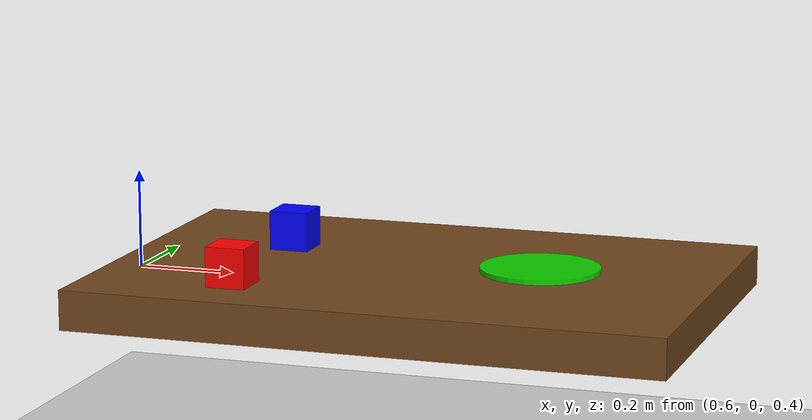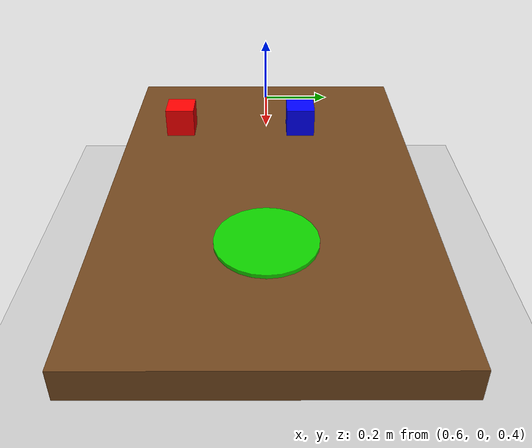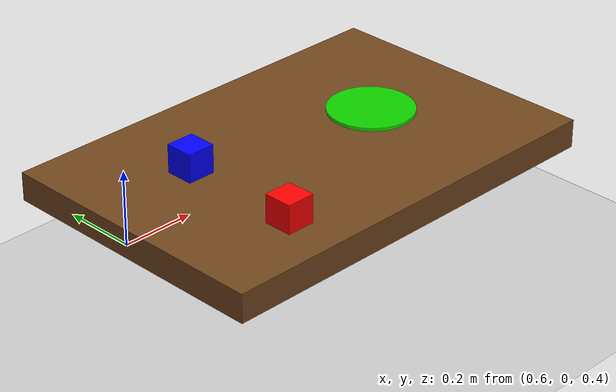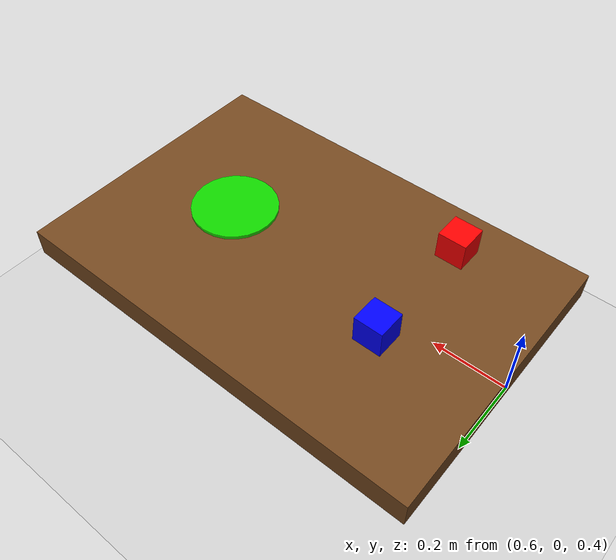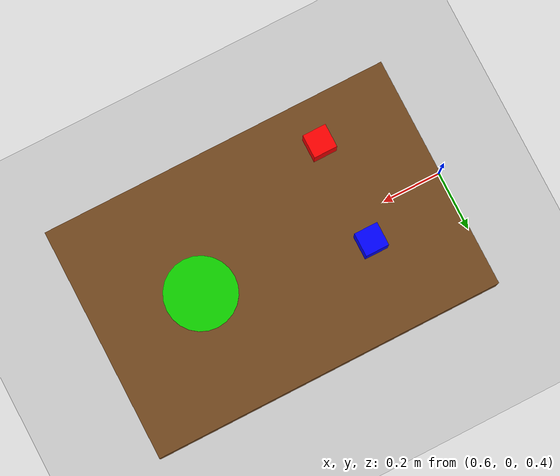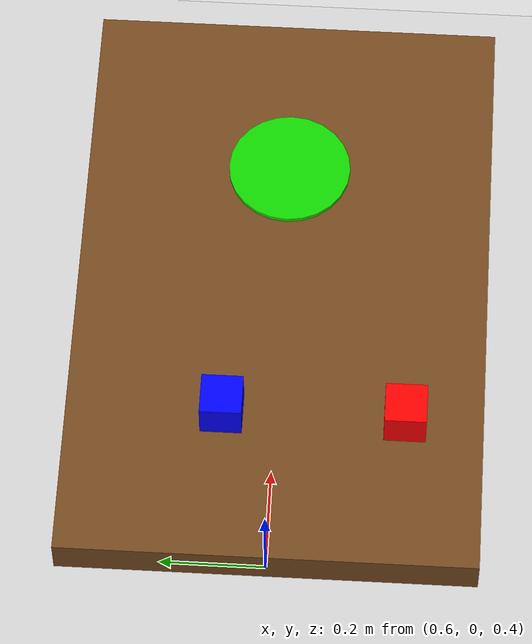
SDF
<?xml version="1.0" ?>
<sdf version="1.6">
  <world name="assistive_gaze_world">

    <include>
      <uri>model://ground_plane</uri>
    </include>

    <include>
      <uri>model://sun</uri>
    </include>
    <plugin
      name="object_pose_plugin"
      filename="libobject_pose_plugin.so"/>
    <!-- Table -->
    <model name="assistive_table">
      <static>true</static>
      <pose>1.2 0 0.4 0 0 0</pose>

      <link name="table_link">
        <visual name="table_visual">
          <geometry>
            <box>
              <size>1.2 0.8 0.08</size>
            </box>
          </geometry>
          <material>
            <ambient>0.45 0.28 0.12 1</ambient>
          </material>
        </visual>

        <collision name="table_collision">
          <geometry>
            <box>
              <size>1.2 0.8 0.08</size>
            </box>
          </geometry>
        </collision>
      </link>
    </model>

    <!-- Selectable Object 1 -->
    <model name="red_cube">
      <pose>0.9 -0.25 0.48 0 0 0</pose>
      <link name="link">
        <inertial>
          <mass>0.2</mass>
        </inertial>

        <visual name="visual">
          <geometry>
            <box>
              <size>0.08 0.08 0.08</size>
            </box>
          </geometry>
          <material>
            <ambient>1 0 0 1</ambient>
          </material>
        </visual>

        <collision name="collision">
          <geometry>
            <box>
              <size>0.08 0.08 0.08</size>
            </box>
          </geometry>
        </collision>
      </link>
    </model>

    <!-- Selectable Object 2 -->
    <model name="blue_cube">
      <pose>0.9 0.10 0.48 0 0 0</pose>
      <link name="link">
        <inertial>
          <mass>0.2</mass>
        </inertial>

        <visual name="visual">
          <geometry>
            <box>
              <size>0.08 0.08 0.08</size>
            </box>
          </geometry>
          <material>
            <ambient>0 0 1 1</ambient>
          </material>
        </visual>

        <collision name="collision">
          <geometry>
            <box>
              <size>0.08 0.08 0.08</size>
            </box>
          </geometry>
        </collision>
      </link>
    </model>

    <!-- Place Zone -->
    <model name="place_zone">
      <static>true</static>
      <pose>1.45 0 0.455 0 0 0</pose>
      <link name="link">
        <visual name="visual">
          <geometry>
            <cylinder>
              <radius>0.12</radius>
              <length>0.01</length>
            </cylinder>
          </geometry>
          <material>
            <ambient>0 1 0 0.8</ambient>
          </material>
        </visual>
      </link>
    </model>

    <!-- Overhead Camera -->
    <model name="overhead_camera">
      <static>true</static>
      <pose>1.1 0 1.6 0 1.5708 0</pose>

      <link name="overhead_camera_link">
        <sensor name="overhead_camera_sensor" type="camera">
          <always_on>true</always_on>
          <update_rate>30</update_rate>
          <visualize>true</visualize>

          <camera>
            <horizontal_fov>1.3962634</horizontal_fov>
            <image>
              <width>640</width>
              <height>480</height>
              <format>R8G8B8</format>
            </image>
            <clip>
              <near>0.05</near>
              <far>10.0</far>
            </clip>
          </camera>

          <plugin name="overhead_camera_controller" filename="libgazebo_ros_camera.so">
            <ros>
              <namespace>/overhead_camera</namespace>
            </ros>
            <camera_name>overhead_camera</camera_name>
            <frame_name>overhead_camera_link</frame_name>
          </plugin>
        </sensor>
      </link>
    </model>

  </world>
</sdf>
